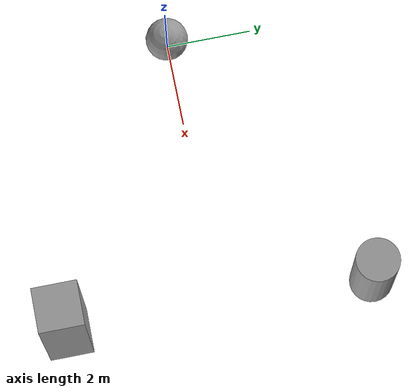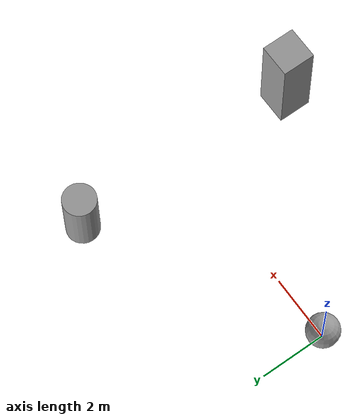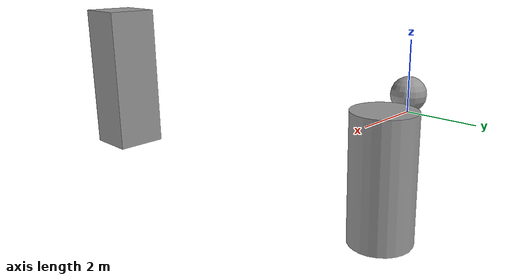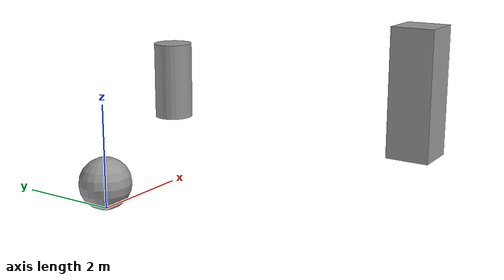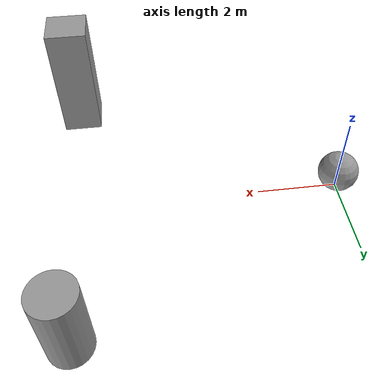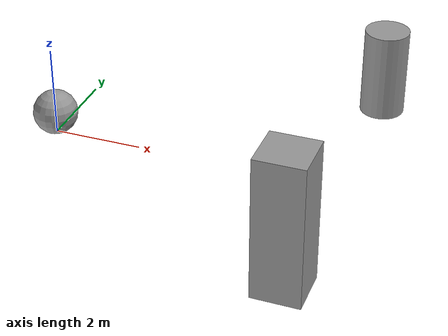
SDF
<sdf version="1.6">
 <world name="default">
  <light name="sun" type="directional">
   <pose>0 0 10 0 -0 0</pose>
   <diffuse>0.8 0.8 0.8 1</diffuse>
   <specular>0.2 0.2 0.2 1</specular>
   <attenuation>
    <range>1000</range>
    <constant>0.9</constant>
    <linear>0.01</linear>
    <quadratic>0.001</quadratic>
   </attenuation>
   <direction>-0.5 0.1 -0.9</direction>
  </light>
  <plugin name="ros_interface_plugin" filename="librotors_gazebo_ros_interface_plugin.so"/>
  <physics name="default_physics" default="0" type="ode">
   <ode>
    <solver>
     <type>quick</type>
     <iters>10</iters>
     <sor>1.3</sor>
     <use_dynamic_moi_rescaling>0</use_dynamic_moi_rescaling>
    </solver>
    <constraints>
     <cfm>0</cfm>
     <erp>0.2</erp>
     <contact_max_correcting_vel>100</contact_max_correcting_vel>
     <contact_surface_layer>0.001</contact_surface_layer>
    </constraints>
   </ode>
   <max_step_size>0.002</max_step_size>
   <real_time_factor>1</real_time_factor>
   <real_time_update_rate>500</real_time_update_rate>
  </physics>
  <gravity>0 0 -9.8066</gravity>
  <magnetic_field>6e-06 2.3e-05 -4.2e-05</magnetic_field>
  <atmosphere type="adiabatic"/>
  <scene><ambient>0.4 0.4 0.4 1</ambient><background>0.7 0.7 0.7 1</background><shadows>1</shadows></scene>
  <spherical_coordinates>
   <surface_model>EARTH_WGS84</surface_model>
   <latitude_deg>0</latitude_deg>
   <longitude_deg>0</longitude_deg>
   <elevation>0</elevation>
   <heading_deg>0</heading_deg>
  </spherical_coordinates>
  <model name="unit_sphere_p">
   <link name="link">
    <inertial>
     <mass>1</mass>
     <inertia><ixx>0.1</ixx><ixy>0</ixy><ixz>0</ixz><iyy>0.1</iyy><iyz>0</iyz><izz>0.1</izz></inertia>
    </inertial>
    <gravity>0</gravity>
    <visual name="visual">
     <geometry><sphere><radius>0.5</radius></sphere></geometry>
     <material>
      <script><name>Gazebo/Grey</name><uri>file://media/materials/scripts/gazebo.material</uri></script>
      <shader type="pixel"><normal_map>__default__</normal_map></shader>
      <ambient>0.3 0.3 0.3 1</ambient>
      <diffuse>0.7 0.7 0.7 1</diffuse>
      <specular>0.01 0.01 0.01 1</specular>
      <emissive>0 0 0 1</emissive>
     </material>
    </visual>
    <collision name="collision">
     <geometry><sphere><radius>0.5</radius></sphere></geometry>
     <surface>
      <friction>
       <ode><mu>1</mu><mu2>1</mu2><fdir1>0 0 0</fdir1><slip1>0</slip1><slip2>0</slip2></ode>
       <torsional>
        <coefficient>1</coefficient>
        <patch_radius>0</patch_radius>
        <surface_radius>0</surface_radius>
        <use_patch_radius>1</use_patch_radius>
        <ode><slip>0</slip></ode>
       </torsional>
      </friction>
      <bounce><restitution_coefficient>0</restitution_coefficient><threshold>1e+06</threshold></bounce>
      <contact>
       <collide_without_contact>0</collide_without_contact>
       <collide_without_contact_bitmask>1</collide_without_contact_bitmask>
       <collide_bitmask>1</collide_bitmask>
       <ode>
        <soft_cfm>0</soft_cfm>
        <soft_erp>0.2</soft_erp>
        <kp>1e+13</kp>
        <kd>1</kd>
        <max_vel>0.01</max_vel>
        <min_depth>0</min_depth>
       </ode>
       <bullet>
        <split_impulse>1</split_impulse>
        <split_impulse_penetration_threshold>-0.01</split_impulse_penetration_threshold>
        <soft_cfm>0</soft_cfm>
        <soft_erp>0.2</soft_erp>
        <kp>1e+13</kp>
        <kd>1</kd>
       </bullet>
      </contact>
     </surface>
    </collision>
   </link>
   <static>0</static>
   <pose>0 0 0.5 0 -0 0</pose>
  </model>
  <model name="unit_box3">
   <link name="link">
    <pose>-0 0 1 0 -0 0</pose>
    <inertial>
     <mass>1</mass>
     <inertia>
      <ixx>0.166667</ixx>
      <ixy>0</ixy>
      <ixz>0</ixz>
      <iyy>0.166667</iyy>
      <iyz>0</iyz>
      <izz>0.166667</izz>
     </inertia>
    </inertial>
    <gravity>0</gravity>
    <visual name="visual">
     <geometry><box><size>1 1 3</size></box></geometry>
     <material>
      <script><name>Gazebo/Grey</name><uri>file://media/materials/scripts/gazebo.material</uri></script>
      <shader type="pixel"><normal_map>__default__</normal_map></shader>
      <ambient>0.3 0.3 0.3 1</ambient>
      <diffuse>0.7 0.7 0.7 1</diffuse>
      <specular>0.01 0.01 0.01 1</specular>
      <emissive>0 0 0 1</emissive>
     </material>
    </visual>
    <collision name="collision">
     <geometry><box><size>1 1 3</size></box></geometry>
     <surface>
      <friction>
       <ode><mu>1</mu><mu2>1</mu2><fdir1>0 0 0</fdir1><slip1>0</slip1><slip2>0</slip2></ode>
       <torsional>
        <coefficient>1</coefficient>
        <patch_radius>0</patch_radius>
        <surface_radius>0</surface_radius>
        <use_patch_radius>1</use_patch_radius>
        <ode><slip>0</slip></ode>
       </torsional>
      </friction>
      <bounce><restitution_coefficient>0</restitution_coefficient><threshold>1e+06</threshold></bounce>
      <contact>
       <collide_without_contact>0</collide_without_contact>
       <collide_without_contact_bitmask>1</collide_without_contact_bitmask>
       <collide_bitmask>1</collide_bitmask>
       <ode>
        <soft_cfm>0</soft_cfm>
        <soft_erp>0.2</soft_erp>
        <kp>1e+13</kp>
        <kd>1</kd>
        <max_vel>0.01</max_vel>
        <min_depth>0</min_depth>
       </ode>
       <bullet>
        <split_impulse>1</split_impulse>
        <split_impulse_penetration_threshold>-0.01</split_impulse_penetration_threshold>
        <soft_cfm>0</soft_cfm>
        <soft_erp>0.2</soft_erp>
        <kp>1e+13</kp>
        <kd>1</kd>
       </bullet>
      </contact>
     </surface>
    </collision>
   </link>
   <static>0</static>
   <pose>6.45782 -3.52287 0.499998 0 -1e-06 7.2e-05</pose>
  </model>
  <model name="unit_cylinder_p">
   <link name="link">
    <inertial>
     <mass>1</mass>
     <inertia><ixx>0.145833</ixx><ixy>0</ixy><ixz>0</ixz><iyy>0.145833</iyy><iyz>0</iyz><izz>0.125</izz></inertia>
    </inertial>
    <gravity>0</gravity>
    <visual name="visual">
     <geometry><cylinder><radius>0.5</radius><length>2</length></cylinder></geometry>
     <material>
      <script><name>Gazebo/Grey</name><uri>file://media/materials/scripts/gazebo.material</uri></script>
      <shader type="pixel"><normal_map>__default__</normal_map></shader>
      <ambient>0.3 0.3 0.3 1</ambient>
      <diffuse>0.7 0.7 0.7 1</diffuse>
      <specular>0.01 0.01 0.01 1</specular>
      <emissive>0 0 0 1</emissive>
     </material>
    </visual>
    <collision name="collision">
     <geometry><cylinder><radius>0.5</radius><length>2</length></cylinder></geometry>
     <surface>
      <friction>
       <ode><mu>1</mu><mu2>1</mu2><fdir1>0 0 0</fdir1><slip1>0</slip1><slip2>0</slip2></ode>
       <torsional>
        <coefficient>1</coefficient>
        <patch_radius>0</patch_radius>
        <surface_radius>0</surface_radius>
        <use_patch_radius>1</use_patch_radius>
        <ode><slip>0</slip></ode>
       </torsional>
      </friction>
      <bounce><restitution_coefficient>0</restitution_coefficient><threshold>1e+06</threshold></bounce>
      <contact>
       <collide_without_contact>0</collide_without_contact>
       <collide_without_contact_bitmask>1</collide_without_contact_bitmask>
       <collide_bitmask>1</collide_bitmask>
       <ode>
        <soft_cfm>0</soft_cfm>
        <soft_erp>0.2</soft_erp>
        <kp>1e+13</kp>
        <kd>1</kd>
        <max_vel>0.01</max_vel>
        <min_depth>0</min_depth>
       </ode>
       <bullet>
        <split_impulse>1</split_impulse>
        <split_impulse_penetration_threshold>-0.01</split_impulse_penetration_threshold>
        <soft_cfm>0</soft_cfm>
        <soft_erp>0.2</soft_erp>
        <kp>1e+13</kp>
        <kd>1</kd>
       </bullet>
      </contact>
     </surface>
    </collision>
   </link>
   <static>0</static>
   <pose>6.57002 3.51237 0.999981 0 -2e-06 -1.4e-05</pose>
  </model>
 </world>
</sdf>
